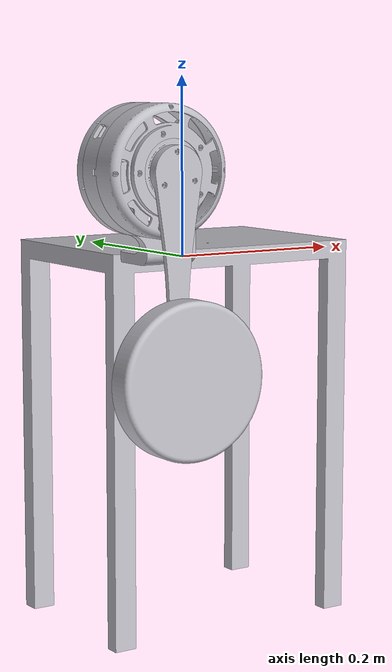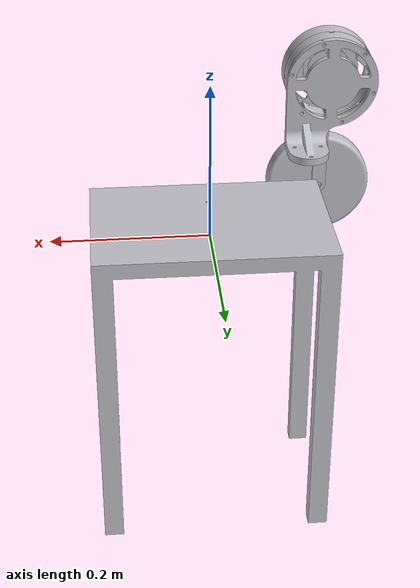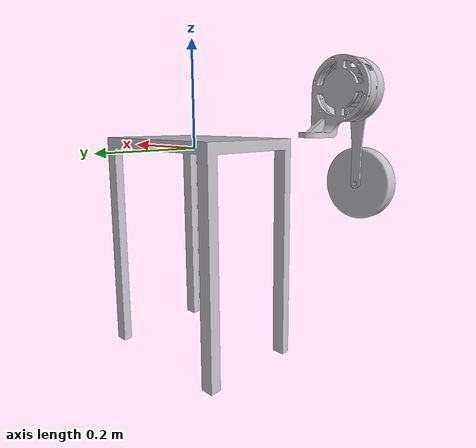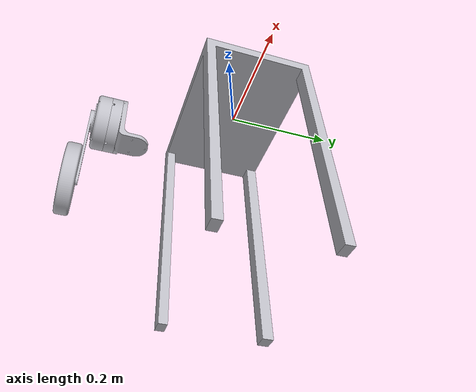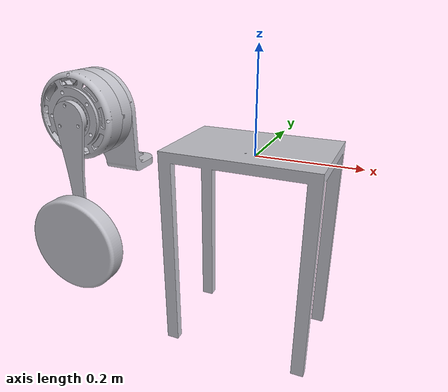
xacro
<?xml version="1.0" ?>
<robot name="Fusion2URDF" xmlns:xacro="http://www.ros.org/wiki/xacro">

<xacro:include filename="$(find bj_actuator_rviz)/urdf/materials.xacro" />
<link name="base_link">
  <inertial>
    <origin xyz="-0.0028333913852937793 0.0016880799364849609 0.3337874408380629" rpy="0 0 0"/>
    <mass value="14.785990178874746"/>
    <inertia ixx="0.29892" iyy="0.394886" izz="0.24856" ixy="0.003362" iyz="0.003339" ixz="-0.005604"/>
  </inertial>
  <visual>
    <origin xyz="0.15 0.1 0" rpy="0 0 0"/>
    <geometry>
      <mesh filename="file://$(find bj_actuator_rviz)/meshes/base_link.stl" scale="0.001 0.001 0.001"/>
    </geometry>
    <material name="silver"/>
  </visual>
  <collision>
    <origin xyz="0.15 0.1 0" rpy="0 0 0"/>
    <geometry>
      <mesh filename="file://$(find bj_actuator_rviz)/meshes/base_link.stl" scale="0.001 0.001 0.001"/>
    </geometry>
  </collision>
</link>

<link name="motor_mount_1">
  <inertial>
    <origin xyz="-0.019812763184602906 -0.04982898469216046 0.0604093161056351" rpy="0 0 0"/>
    <mass value="1.1722540905080954"/>
    <inertia ixx="0.002714" iyy="0.003585" izz="0.001392" ixy="-0.000166" iyz="0.00045" ixz="0.000773"/>
  </inertial>
  <visual>
    <origin xyz="0.0 0.048 -0.42" rpy="0 0 0"/>
    <geometry>
      <mesh filename="file://$(find bj_actuator_rviz)/meshes/motor_mount_1.stl" scale="0.001 0.001 0.001"/>
    </geometry>
    <material name="silver"/>
  </visual>
  <collision>
    <origin xyz="0.0 0.048 -0.42" rpy="0 0 0"/>
    <geometry>
      <mesh filename="file://$(find bj_actuator_rviz)/meshes/motor_mount_1.stl" scale="0.001 0.001 0.001"/>
    </geometry>
  </collision>
</link>

<link name="front_case_1">
  <inertial>
    <origin xyz="0.00029391797787406415 -0.023331291949689054 -0.0005514826691431773" rpy="0 0 0"/>
    <mass value="0.4273308542503233"/>
    <inertia ixx="0.000607" iyy="0.001141" izz="0.000598" ixy="-1e-06" iyz="3e-06" ixz="6e-06"/>
  </inertial>
  <visual>
    <origin xyz="0.034875 0.13427 -0.51255" rpy="0 0 0"/>
    <geometry>
      <mesh filename="file://$(find bj_actuator_rviz)/meshes/front_case_1.stl" scale="0.001 0.001 0.001"/>
    </geometry>
    <material name="silver"/>
  </visual>
  <collision>
    <origin xyz="0.034875 0.13427 -0.51255" rpy="0 0 0"/>
    <geometry>
      <mesh filename="file://$(find bj_actuator_rviz)/meshes/front_case_1.stl" scale="0.001 0.001 0.001"/>
    </geometry>
  </collision>
</link>

<link name="rear_case_241023_1">
  <inertial>
    <origin xyz="-0.0018600683258188921 -0.008197870915798613 -0.0010903891552709322" rpy="0 0 0"/>
    <mass value="0.21930558501864583"/>
    <inertia ixx="0.000346" iyy="0.000681" izz="0.000363" ixy="1e-06" iyz="3e-06" ixz="1.2e-05"/>
  </inertial>
  <visual>
    <origin xyz="0.034875 0.11 -0.51255" rpy="0 0 0"/>
    <geometry>
      <mesh filename="file://$(find bj_actuator_rviz)/meshes/rear_case_241023_1.stl" scale="0.001 0.001 0.001"/>
    </geometry>
    <material name="silver"/>
  </visual>
  <collision>
    <origin xyz="0.034875 0.11 -0.51255" rpy="0 0 0"/>
    <geometry>
      <mesh filename="file://$(find bj_actuator_rviz)/meshes/rear_case_241023_1.stl" scale="0.001 0.001 0.001"/>
    </geometry>
  </collision>
</link>

<link name="mass_plate_1">
  <inertial>
    <origin xyz="-3.565406989786135e-07 -0.015000416695875818 -4.2986097964492487e-07" rpy="0 0 0"/>
    <mass value="13.129065500806407"/>
    <inertia ixx="0.019268" iyy="0.036596" izz="0.019268" ixy="0.0" iyz="0.0" ixz="-0.0"/>
  </inertial>
  <visual>
    <origin xyz="0.034875 0.17717 -0.32255" rpy="0 0 0"/>
    <geometry>
      <mesh filename="file://$(find bj_actuator_rviz)/meshes/mass_plate_1.stl" scale="0.001 0.001 0.001"/>
    </geometry>
    <material name="silver"/>
  </visual>
  <collision>
    <origin xyz="0.034875 0.17717 -0.32255" rpy="0 0 0"/>
    <geometry>
      <mesh filename="file://$(find bj_actuator_rviz)/meshes/mass_plate_1.stl" scale="0.001 0.001 0.001"/>
    </geometry>
  </collision>
</link>

<link name="bearing_1">
  <inertial>
    <origin xyz="-3.566897106288547e-07 0.003199583304124093 -4.298609794783914e-07" rpy="0 0 0"/>
    <mass value="0.008940871381981142"/>
    <inertia ixx="4e-06" iyy="8e-06" izz="4e-06" ixy="-0.0" iyz="-0.0" ixz="0.0"/>
  </inertial>
  <visual>
    <origin xyz="0.034875 0.16687 -0.51255" rpy="0 0 0"/>
    <geometry>
      <mesh filename="file://$(find bj_actuator_rviz)/meshes/bearing_1.stl" scale="0.001 0.001 0.001"/>
    </geometry>
    <material name="silver"/>
  </visual>
  <collision>
    <origin xyz="0.034875 0.16687 -0.51255" rpy="0 0 0"/>
    <geometry>
      <mesh filename="file://$(find bj_actuator_rviz)/meshes/bearing_1.stl" scale="0.001 0.001 0.001"/>
    </geometry>
  </collision>
</link>

<link name="test_bar_1">
  <inertial>
    <origin xyz="-3.5663382381284636e-07 -0.006331231500105339 -0.05069848681238098" rpy="0 0 0"/>
    <mass value="0.33133706662052054"/>
    <inertia ixx="0.001228" iyy="0.001264" izz="4.1e-05" ixy="0.0" iyz="-2e-05" ixz="0.0"/>
  </inertial>
  <visual>
    <origin xyz="0.034875 0.16717 -0.51255" rpy="0 0 0"/>
    <geometry>
      <mesh filename="file://$(find bj_actuator_rviz)/meshes/test_bar_1.stl" scale="0.001 0.001 0.001"/>
    </geometry>
    <material name="silver"/>
  </visual>
  <collision>
    <origin xyz="0.034875 0.16717 -0.51255" rpy="0 0 0"/>
    <geometry>
      <mesh filename="file://$(find bj_actuator_rviz)/meshes/test_bar_1.stl" scale="0.001 0.001 0.001"/>
    </geometry>
  </collision>
</link>

<joint name="base_joint" type="fixed">
  <origin xyz="0.0 -0.048 0.42" rpy="0 0 0"/>
  <parent link="base_link"/>
  <child link="motor_mount_1"/>
</joint>

<joint name="mount_joint" type="fixed">
  <origin xyz="-0.034875 -0.062 0.09255" rpy="0 0 0"/>
  <parent link="motor_mount_1"/>
  <child link="rear_case_241023_1"/>
</joint>

<joint name="case_joint" type="fixed">
  <origin xyz="0.0 -0.02427 0.0" rpy="0 0 0"/>
  <parent link="rear_case_241023_1"/>
  <child link="front_case_1"/>
</joint>

<joint name="gear_joint" type="fixed">
  <origin xyz="0.0 -0.0326 0.0" rpy="0 0 0"/>
  <parent link="front_case_1"/>
  <child link="bearing_1"/>
</joint>

<joint name="continuous_joint" type="continuous">
  <origin xyz="0.0 -0.0003 0.0" rpy="0 0 0"/>
  <parent link="bearing_1"/>
  <child link="test_bar_1"/>
  <axis xyz="0.0 1.0 0.0"/>
</joint>

<joint name="mass_joint" type="fixed">
  <origin xyz="0.0 -0.01 -0.19" rpy="0 0 0"/>
  <parent link="test_bar_1"/>
  <child link="mass_plate_1"/>
</joint>

</robot>
